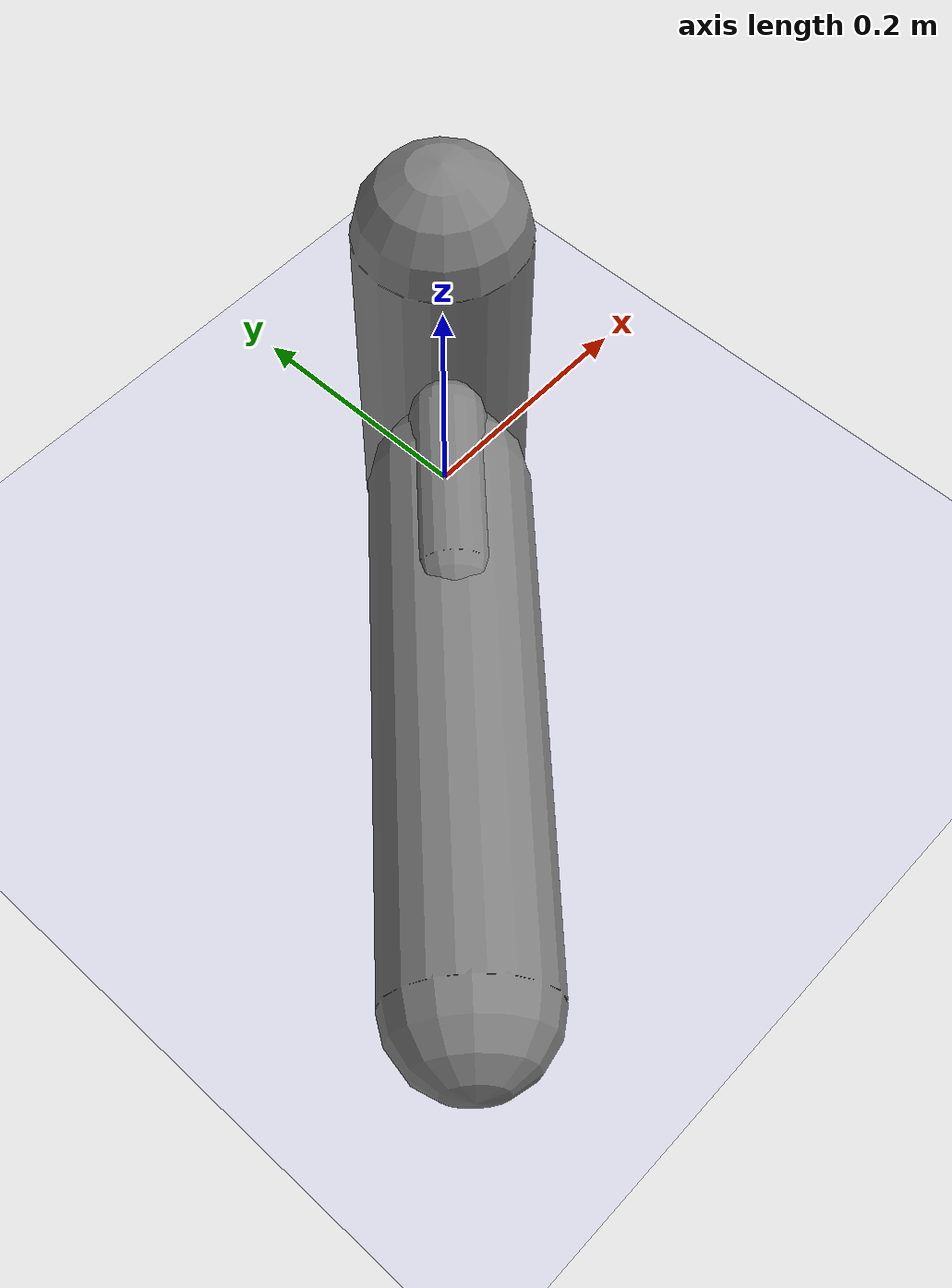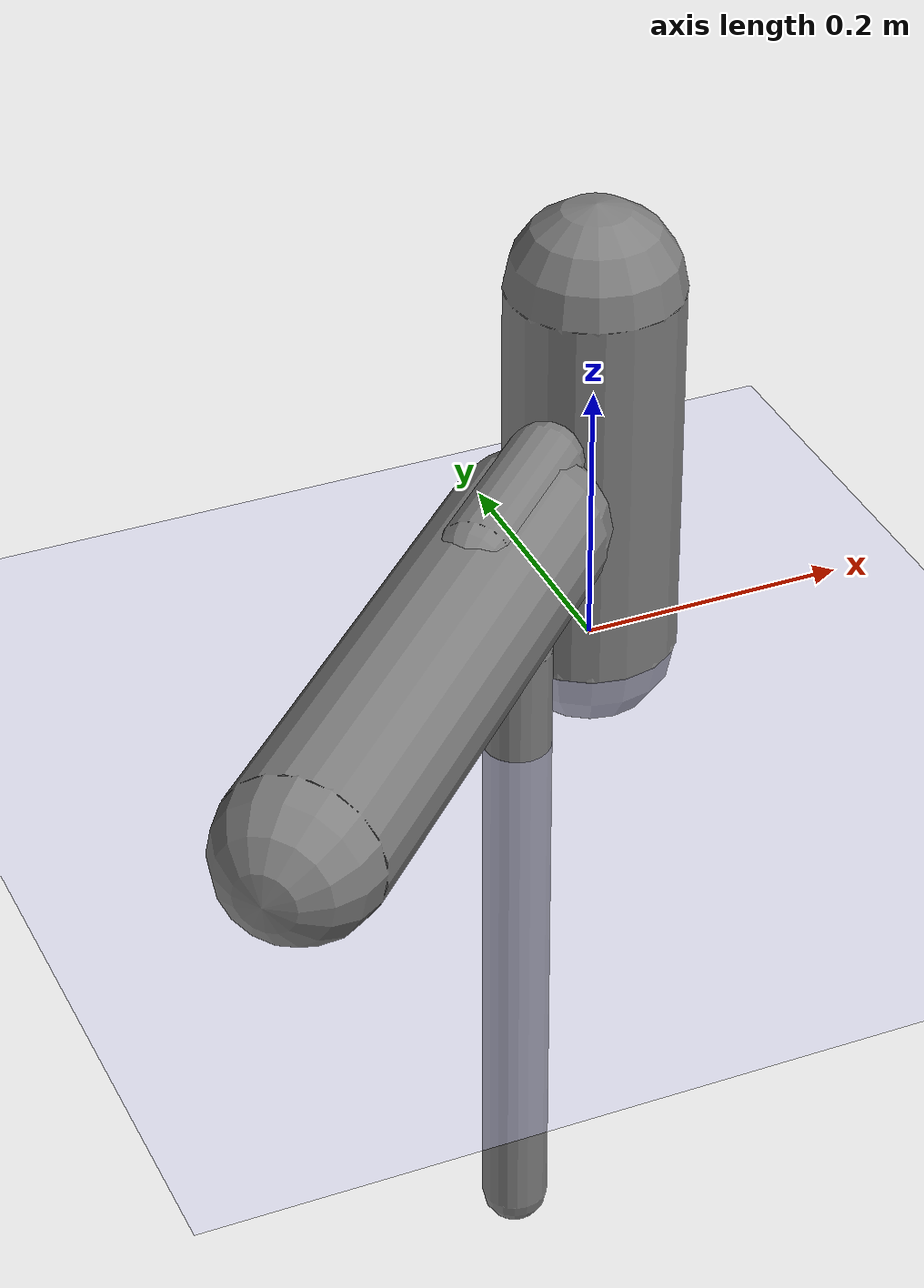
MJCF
<?xml version='1.0' encoding='UTF-8'?>
<mujoco model="robot_model">
  <worldbody>
    <light name="light" pos="0 -3 10" dir="0 0.5 -1" diffuse=".8 .8 .8" specular="0.1 0.1 0.1"/>
    <geom name="floor" type="plane" size="10.0 10.0 0.1" pos="0 0 0" rgba="0.8 0.8 1 1" contype="2" conaffinity="1"/>
    <body name="limb0" pos="0 0 0">
      <geom name="limb0_geom" type="capsule" fromto="0 0 0 0 0 0.28577108502704274" size="0.06413002805518268" density="513.0207045947502" contype="1" conaffinity="2"/>
      <site type="sphere" size="0.01" name="limb0_site0" pos="-0.08883105850288772 -0.08883105850288768 0.16452472668170662" quat="0.7071067811865476 0.4999999999999999 -0.5000000000000001 0.0"/>
      <site type="sphere" size="0.01" name="limb0_site1" pos="-0.0677427487117525 -0.06774274871175247 0.2015779463252641" quat="0.7071067811865476 0.4999999999999999 -0.5000000000000001 0.0"/>
      <freejoint name="limb0_root"/>
      <body name="limb1" pos="-0.08883105850288772 -0.08883105850288768 0.16452472668170662" quat="0.7071067811865476 0.4999999999999999 -0.5000000000000001 0.0">
        <geom name="limb1_geom" type="capsule" fromto="0 0 0 0 0 0.381964648282356" size="0.05749605963955894" density="734.617191813426" contype="1" conaffinity="2"/>
        <site type="sphere" size="0.01" name="limb1_site0" pos="-0.0607576354519139 -0.06075763545191388 0.01843575101903758" quat="0.7071067811865476 0.4999999999999999 -0.5000000000000001 0.0"/>
        <body name="limb2" pos="-0.0607576354519139 -0.06075763545191388 0.01843575101903758" quat="0.7071067811865476 0.4999999999999999 -0.5000000000000001 0.0">
          <geom name="limb2_geom" type="capsule" fromto="0 0 0 0 0 0.5" size="0.024428212434258044" density="1062.635430219891" contype="1" conaffinity="2"/>
          <joint name="joint_limb1_limb2_0" type="hinge" axis="1 0 0" range="-89.47399292830738 89.47399292830738" damping="5.0"/>
        </body>
        <joint name="joint_limb0_limb1_0" type="hinge" axis="0 1 0" range="-113.6566083474294 113.6566083474294" damping="5.0"/>
      </body>
      <body name="limb3" pos="-0.0677427487117525 -0.06774274871175247 0.2015779463252641" quat="0.7071067811865476 0.4999999999999999 -0.5000000000000001 0.0">
        <geom name="limb3_geom" type="capsule" fromto="0 0 0 0 0 0.12696948819370785" size="0.027672685925410185" density="1018.6116784330146" contype="1" conaffinity="2"/>
        <joint name="joint_limb0_limb3_0" type="hinge" axis="0 1 0" range="-61.24665513392864 61.24665513392864" damping="5.0"/>
      </body>
    </body>
  </worldbody>
  <actuator>
    <position name="position_actuator_joint_limb0_limb1_0" joint="joint_limb0_limb1_0" gear="1.081511317933534" inheritrange="1" forcerange="-22.799828214070324 22.799828214070324" forcelimited="true" kp="100.0"/>
    <position name="position_actuator_joint_limb1_limb2_0" joint="joint_limb1_limb2_0" gear="1.7956588153122564" inheritrange="1" forcerange="-5.304751185392159 5.304751185392159" forcelimited="true" kp="100.0"/>
    <position name="position_actuator_joint_limb0_limb3_0" joint="joint_limb0_limb3_0" gear="0.9612553609096056" inheritrange="1" forcerange="-2.0078028957054825 2.0078028957054825" forcelimited="true" kp="100.0"/>
  </actuator>
  <contact>
    <pair geom1="limb0_geom" geom2="limb1_geom"/>
    <pair geom1="limb1_geom" geom2="limb2_geom"/>
    <pair geom1="limb0_geom" geom2="limb3_geom"/>
  </contact>
</mujoco>
